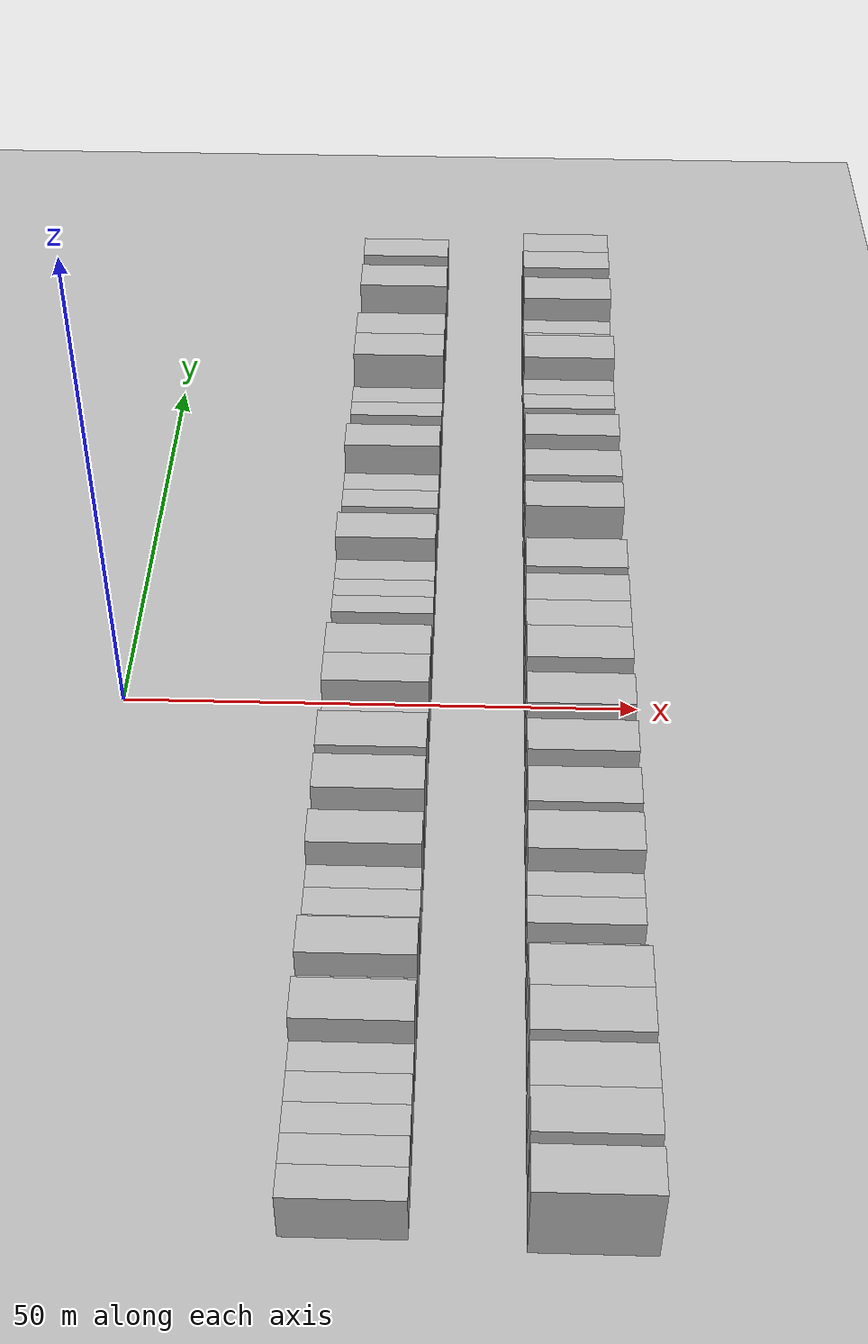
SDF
<sdf version="1.6">
 <world name="default">
  <include><name>ground_plane_1</name><uri>model://HANNAS_ground_plane</uri></include>
  <include>
   <name>ground_plane_2</name>
   <uri>model://HANNAS_ground_plane</uri>
   <pose>100 0 0  0 0 0</pose>
  </include>
  <model name="building_32">
   <static>1</static>
   <pose>25.0000 -56.2115 0 0.000000 0.000000 0.000000</pose>
   <link name="link">
    <pose>0 0 3.00 0 0 0</pose>
    <collision name="collision"><geometry><box><size>10.0000 2.8945 6.0000</size></box></geometry></collision>
    <visual name="visual">
     <cast_shadows>0</cast_shadows>
     <geometry><box><size>10.0000 2.8945 6.0000</size></box></geometry>
     <material>
      <script>
       <uri>model://HANNAS_wall/materials/scripts</uri>
       <uri>model://HANNAS_wall/materials/textures</uri>
       <name>vrc/HANNAS_wall</name>
      </script>
     </material>
    </visual>
   </link>
  </model>
  <model name="building_33">
   <static>1</static>
   <pose>25.0000 -53.4264 0 0.000000 0.000000 0.000000</pose>
   <link name="link">
    <pose>0 0 3.00 0 0 0</pose>
    <collision name="collision"><geometry><box><size>10.0000 2.6756 6.0000</size></box></geometry></collision>
    <visual name="visual">
     <cast_shadows>0</cast_shadows>
     <geometry><box><size>10.0000 2.6756 6.0000</size></box></geometry>
     <material>
      <script>
       <uri>model://HANNAS_wall/materials/scripts</uri>
       <uri>model://HANNAS_wall/materials/textures</uri>
       <name>vrc/HANNAS_wall</name>
      </script>
     </material>
    </visual>
   </link>
  </model>
  <model name="building_34">
   <static>1</static>
   <pose>25.0000 -50.6966 0 0.000000 0.000000 0.000000</pose>
   <link name="link">
    <pose>0 0 3.00 0 0 0</pose>
    <collision name="collision"><geometry><box><size>10.0000 2.7839 6.0000</size></box></geometry></collision>
    <visual name="visual">
     <cast_shadows>0</cast_shadows>
     <geometry><box><size>10.0000 2.7839 6.0000</size></box></geometry>
     <material>
      <script>
       <uri>model://HANNAS_wall/materials/scripts</uri>
       <uri>model://HANNAS_wall/materials/textures</uri>
       <name>vrc/HANNAS_wall</name>
      </script>
     </material>
    </visual>
   </link>
  </model>
  <model name="building_35">
   <static>1</static>
   <pose>25.0000 -47.9064 0 0.000000 0.000000 0.000000</pose>
   <link name="link">
    <pose>0 0 3.00 0 0 0</pose>
    <collision name="collision"><geometry><box><size>10.0000 2.7965 6.0000</size></box></geometry></collision>
    <visual name="visual">
     <cast_shadows>0</cast_shadows>
     <geometry><box><size>10.0000 2.7965 6.0000</size></box></geometry>
     <material>
      <script>
       <uri>model://HANNAS_wall/materials/scripts</uri>
       <uri>model://HANNAS_wall/materials/textures</uri>
       <name>vrc/HANNAS_wall</name>
      </script>
     </material>
    </visual>
   </link>
  </model>
  <model name="building_36">
   <static>1</static>
   <pose>25.0000 -45.0983 0 0.000000 0.000000 0.000000</pose>
   <link name="link">
    <pose>0 0 3.00 0 0 0</pose>
    <collision name="collision"><geometry><box><size>10.0000 2.8197 6.0000</size></box></geometry></collision>
    <visual name="visual">
     <cast_shadows>0</cast_shadows>
     <geometry><box><size>10.0000 2.8197 6.0000</size></box></geometry>
     <material>
      <script>
       <uri>model://HANNAS_wall/materials/scripts</uri>
       <uri>model://HANNAS_wall/materials/textures</uri>
       <name>vrc/HANNAS_wall</name>
      </script>
     </material>
    </visual>
   </link>
  </model>
  <model name="building_37">
   <static>1</static>
   <pose>25.0000 -41.6867 0 0.000000 0.000000 0.000000</pose>
   <link name="link">
    <pose>0 0 4.50 0 0 0</pose>
    <collision name="collision"><geometry><box><size>10.0000 4.0036 9.0000</size></box></geometry></collision>
    <visual name="visual">
     <cast_shadows>0</cast_shadows>
     <geometry><box><size>10.0000 4.0036 9.0000</size></box></geometry>
     <material>
      <script>
       <uri>model://HANNAS_wall/materials/scripts</uri>
       <uri>model://HANNAS_wall/materials/textures</uri>
       <name>vrc/HANNAS_wall</name>
      </script>
     </material>
    </visual>
   </link>
  </model>
  <model name="building_38">
   <static>1</static>
   <pose>25.0000 -38.4677 0 0.000000 0.000000 0.000000</pose>
   <link name="link">
    <pose>0 0 3.00 0 0 0</pose>
    <collision name="collision"><geometry><box><size>10.0000 2.4344 6.0000</size></box></geometry></collision>
    <visual name="visual">
     <cast_shadows>0</cast_shadows>
     <geometry><box><size>10.0000 2.4344 6.0000</size></box></geometry>
     <material>
      <script>
       <uri>model://HANNAS_wall/materials/scripts</uri>
       <uri>model://HANNAS_wall/materials/textures</uri>
       <name>vrc/HANNAS_wall</name>
      </script>
     </material>
    </visual>
   </link>
  </model>
  <model name="building_39">
   <static>1</static>
   <pose>25.0000 -35.3633 0 0.000000 0.000000 0.000000</pose>
   <link name="link">
    <pose>0 0 4.50 0 0 0</pose>
    <collision name="collision"><geometry><box><size>10.0000 3.7743 9.0000</size></box></geometry></collision>
    <visual name="visual">
     <cast_shadows>0</cast_shadows>
     <geometry><box><size>10.0000 3.7743 9.0000</size></box></geometry>
     <material>
      <script>
       <uri>model://HANNAS_wall/materials/scripts</uri>
       <uri>model://HANNAS_wall/materials/textures</uri>
       <name>vrc/HANNAS_wall</name>
      </script>
     </material>
    </visual>
   </link>
  </model>
  <model name="building_40">
   <static>1</static>
   <pose>25.0000 -32.2189 0 0.000000 0.000000 0.000000</pose>
   <link name="link">
    <pose>0 0 3.00 0 0 0</pose>
    <collision name="collision"><geometry><box><size>10.0000 2.5145 6.0000</size></box></geometry></collision>
    <visual name="visual">
     <cast_shadows>0</cast_shadows>
     <geometry><box><size>10.0000 2.5145 6.0000</size></box></geometry>
     <material>
      <script>
       <uri>model://HANNAS_wall/materials/scripts</uri>
       <uri>model://HANNAS_wall/materials/textures</uri>
       <name>vrc/HANNAS_wall</name>
      </script>
     </material>
    </visual>
   </link>
  </model>
  <model name="building_41">
   <static>1</static>
   <pose>25.0000 -29.4833 0 0.000000 0.000000 0.000000</pose>
   <link name="link">
    <pose>0 0 3.00 0 0 0</pose>
    <collision name="collision"><geometry><box><size>10.0000 2.9567 6.0000</size></box></geometry></collision>
    <visual name="visual">
     <cast_shadows>0</cast_shadows>
     <geometry><box><size>10.0000 2.9567 6.0000</size></box></geometry>
     <material>
      <script>
       <uri>model://HANNAS_wall/materials/scripts</uri>
       <uri>model://HANNAS_wall/materials/textures</uri>
       <name>vrc/HANNAS_wall</name>
      </script>
     </material>
    </visual>
   </link>
  </model>
  <model name="building_42">
   <static>1</static>
   <pose>25.0000 -26.7671 0 0.000000 0.000000 0.000000</pose>
   <link name="link">
    <pose>0 0 3.00 0 0 0</pose>
    <collision name="collision"><geometry><box><size>10.0000 2.4755 6.0000</size></box></geometry></collision>
    <visual name="visual">
     <cast_shadows>0</cast_shadows>
     <geometry><box><size>10.0000 2.4755 6.0000</size></box></geometry>
     <material>
      <script>
       <uri>model://HANNAS_wall/materials/scripts</uri>
       <uri>model://HANNAS_wall/materials/textures</uri>
       <name>vrc/HANNAS_wall</name>
      </script>
     </material>
    </visual>
   </link>
  </model>
  <model name="building_43">
   <static>1</static>
   <pose>25.0000 -23.6810 0 0.000000 0.000000 0.000000</pose>
   <link name="link">
    <pose>0 0 4.50 0 0 0</pose>
    <collision name="collision"><geometry><box><size>10.0000 3.6968 9.0000</size></box></geometry></collision>
    <visual name="visual">
     <cast_shadows>0</cast_shadows>
     <geometry><box><size>10.0000 3.6968 9.0000</size></box></geometry>
     <material>
      <script>
       <uri>model://HANNAS_wall/materials/scripts</uri>
       <uri>model://HANNAS_wall/materials/textures</uri>
       <name>vrc/HANNAS_wall</name>
      </script>
     </material>
    </visual>
   </link>
  </model>
  <model name="building_44">
   <static>1</static>
   <pose>25.0000 -20.5308 0 0.000000 0.000000 0.000000</pose>
   <link name="link">
    <pose>0 0 3.00 0 0 0</pose>
    <collision name="collision"><geometry><box><size>10.0000 2.6037 6.0000</size></box></geometry></collision>
    <visual name="visual">
     <cast_shadows>0</cast_shadows>
     <geometry><box><size>10.0000 2.6037 6.0000</size></box></geometry>
     <material>
      <script>
       <uri>model://HANNAS_wall/materials/scripts</uri>
       <uri>model://HANNAS_wall/materials/textures</uri>
       <name>vrc/HANNAS_wall</name>
      </script>
     </material>
    </visual>
   </link>
  </model>
  <model name="building_45">
   <static>1</static>
   <pose>25.0000 -17.2107 0 0.000000 0.000000 0.000000</pose>
   <link name="link">
    <pose>0 0 4.50 0 0 0</pose>
    <collision name="collision"><geometry><box><size>10.0000 4.0365 9.0000</size></box></geometry></collision>
    <visual name="visual">
     <cast_shadows>0</cast_shadows>
     <geometry><box><size>10.0000 4.0365 9.0000</size></box></geometry>
     <material>
      <script>
       <uri>model://HANNAS_wall/materials/scripts</uri>
       <uri>model://HANNAS_wall/materials/textures</uri>
       <name>vrc/HANNAS_wall</name>
      </script>
     </material>
    </visual>
   </link>
  </model>
  <model name="building_46">
   <static>1</static>
   <pose>25.0000 -12.0202 0 0.000000 0.000000 0.000000</pose>
   <link name="link">
    <pose>0 0 4.50 0 0 0</pose>
    <collision name="collision"><geometry><box><size>10.0000 4.3445 9.0000</size></box></geometry></collision>
    <visual name="visual">
     <cast_shadows>0</cast_shadows>
     <geometry><box><size>10.0000 4.3445 9.0000</size></box></geometry>
     <material>
      <script>
       <uri>model://HANNAS_wall/materials/scripts</uri>
       <uri>model://HANNAS_wall/materials/textures</uri>
       <name>vrc/HANNAS_wall</name>
      </script>
     </material>
    </visual>
   </link>
  </model>
  <model name="building_47">
   <static>1</static>
   <pose>25.0000 -7.3743 0 0.000000 0.000000 0.000000</pose>
   <link name="link">
    <pose>0 0 3.00 0 0 0</pose>
    <collision name="collision"><geometry><box><size>10.0000 2.9473 6.0000</size></box></geometry></collision>
    <visual name="visual">
     <cast_shadows>0</cast_shadows>
     <geometry><box><size>10.0000 2.9473 6.0000</size></box></geometry>
     <material>
      <script>
       <uri>model://HANNAS_wall/materials/scripts</uri>
       <uri>model://HANNAS_wall/materials/textures</uri>
       <name>vrc/HANNAS_wall</name>
      </script>
     </material>
    </visual>
   </link>
  </model>
  <model name="building_48">
   <static>1</static>
   <pose>25.0000 -4.0361 0 0.000000 0.000000 0.000000</pose>
   <link name="link">
    <pose>0 0 4.50 0 0 0</pose>
    <collision name="collision"><geometry><box><size>10.0000 3.7290 9.0000</size></box></geometry></collision>
    <visual name="visual">
     <cast_shadows>0</cast_shadows>
     <geometry><box><size>10.0000 3.7290 9.0000</size></box></geometry>
     <material>
      <script>
       <uri>model://HANNAS_wall/materials/scripts</uri>
       <uri>model://HANNAS_wall/materials/textures</uri>
       <name>vrc/HANNAS_wall</name>
      </script>
     </material>
    </visual>
   </link>
  </model>
  <model name="building_49">
   <static>1</static>
   <pose>25.0000 -0.1658 0 0.000000 0.000000 0.000000</pose>
   <link name="link">
    <pose>0 0 4.50 0 0 0</pose>
    <collision name="collision"><geometry><box><size>10.0000 4.0117 9.0000</size></box></geometry></collision>
    <visual name="visual">
     <cast_shadows>0</cast_shadows>
     <geometry><box><size>10.0000 4.0117 9.0000</size></box></geometry>
     <material>
      <script>
       <uri>model://HANNAS_wall/materials/scripts</uri>
       <uri>model://HANNAS_wall/materials/textures</uri>
       <name>vrc/HANNAS_wall</name>
      </script>
     </material>
    </visual>
   </link>
  </model>
  <model name="building_50">
   <static>1</static>
   <pose>25.0000 3.2630 0 0.000000 0.000000 0.000000</pose>
   <link name="link">
    <pose>0 0 3.00 0 0 0</pose>
    <collision name="collision"><geometry><box><size>10.0000 2.8459 6.0000</size></box></geometry></collision>
    <visual name="visual">
     <cast_shadows>0</cast_shadows>
     <geometry><box><size>10.0000 2.8459 6.0000</size></box></geometry>
     <material>
      <script>
       <uri>model://HANNAS_wall/materials/scripts</uri>
       <uri>model://HANNAS_wall/materials/textures</uri>
       <name>vrc/HANNAS_wall</name>
      </script>
     </material>
    </visual>
   </link>
  </model>
  <model name="building_51">
   <static>1</static>
   <pose>25.0000 7.9048 0 0.000000 0.000000 0.000000</pose>
   <link name="link">
    <pose>0 0 3.00 0 0 0</pose>
    <collision name="collision"><geometry><box><size>10.0000 2.4378 6.0000</size></box></geometry></collision>
    <visual name="visual">
     <cast_shadows>0</cast_shadows>
     <geometry><box><size>10.0000 2.4378 6.0000</size></box></geometry>
     <material>
      <script>
       <uri>model://HANNAS_wall/materials/scripts</uri>
       <uri>model://HANNAS_wall/materials/textures</uri>
       <name>vrc/HANNAS_wall</name>
      </script>
     </material>
    </visual>
   </link>
  </model>
  <model name="building_52">
   <static>1</static>
   <pose>25.0000 10.3342 0 0.000000 0.000000 0.000000</pose>
   <link name="link">
    <pose>0 0 3.00 0 0 0</pose>
    <collision name="collision"><geometry><box><size>10.0000 2.4209 6.0000</size></box></geometry></collision>
    <visual name="visual">
     <cast_shadows>0</cast_shadows>
     <geometry><box><size>10.0000 2.4209 6.0000</size></box></geometry>
     <material>
      <script>
       <uri>model://HANNAS_wall/materials/scripts</uri>
       <uri>model://HANNAS_wall/materials/textures</uri>
       <name>vrc/HANNAS_wall</name>
      </script>
     </material>
    </visual>
   </link>
  </model>
  <model name="building_53">
   <static>1</static>
   <pose>25.0000 13.0067 0 0.000000 0.000000 0.000000</pose>
   <link name="link">
    <pose>0 0 3.00 0 0 0</pose>
    <collision name="collision"><geometry><box><size>10.0000 2.9242 6.0000</size></box></geometry></collision>
    <visual name="visual">
     <cast_shadows>0</cast_shadows>
     <geometry><box><size>10.0000 2.9242 6.0000</size></box></geometry>
     <material>
      <script>
       <uri>model://HANNAS_wall/materials/scripts</uri>
       <uri>model://HANNAS_wall/materials/textures</uri>
       <name>vrc/HANNAS_wall</name>
      </script>
     </material>
    </visual>
   </link>
  </model>
  <model name="building_54">
   <static>1</static>
   <pose>25.0000 16.3869 0 0.000000 0.000000 0.000000</pose>
   <link name="link">
    <pose>0 0 4.50 0 0 0</pose>
    <collision name="collision"><geometry><box><size>10.0000 3.8363 9.0000</size></box></geometry></collision>
    <visual name="visual">
     <cast_shadows>0</cast_shadows>
     <geometry><box><size>10.0000 3.8363 9.0000</size></box></geometry>
     <material>
      <script>
       <uri>model://HANNAS_wall/materials/scripts</uri>
       <uri>model://HANNAS_wall/materials/textures</uri>
       <name>vrc/HANNAS_wall</name>
      </script>
     </material>
    </visual>
   </link>
  </model>
  <model name="building_55">
   <static>1</static>
   <pose>25.0000 20.5947 0 0.000000 0.000000 0.000000</pose>
   <link name="link">
    <pose>0 0 3.00 0 0 0</pose>
    <collision name="collision"><geometry><box><size>10.0000 2.5793 6.0000</size></box></geometry></collision>
    <visual name="visual">
     <cast_shadows>0</cast_shadows>
     <geometry><box><size>10.0000 2.5793 6.0000</size></box></geometry>
     <material>
      <script>
       <uri>model://HANNAS_wall/materials/scripts</uri>
       <uri>model://HANNAS_wall/materials/textures</uri>
       <name>vrc/HANNAS_wall</name>
      </script>
     </material>
    </visual>
   </link>
  </model>
  <model name="building_56">
   <static>1</static>
   <pose>25.0000 24.3041 0 0.000000 0.000000 0.000000</pose>
   <link name="link">
    <pose>0 0 3.00 0 0 0</pose>
    <collision name="collision"><geometry><box><size>10.0000 2.8395 6.0000</size></box></geometry></collision>
    <visual name="visual">
     <cast_shadows>0</cast_shadows>
     <geometry><box><size>10.0000 2.8395 6.0000</size></box></geometry>
     <material>
      <script>
       <uri>model://HANNAS_wall/materials/scripts</uri>
       <uri>model://HANNAS_wall/materials/textures</uri>
       <name>vrc/HANNAS_wall</name>
      </script>
     </material>
    </visual>
   </link>
  </model>
  <model name="building_57">
   <static>1</static>
   <pose>25.0000 27.0720 0 0.000000 0.000000 0.000000</pose>
   <link name="link">
    <pose>0 0 3.00 0 0 0</pose>
    <collision name="collision"><geometry><box><size>10.0000 2.6962 6.0000</size></box></geometry></collision>
    <visual name="visual">
     <cast_shadows>0</cast_shadows>
     <geometry><box><size>10.0000 2.6962 6.0000</size></box></geometry>
     <material>
      <script>
       <uri>model://HANNAS_wall/materials/scripts</uri>
       <uri>model://HANNAS_wall/materials/textures</uri>
       <name>vrc/HANNAS_wall</name>
      </script>
     </material>
    </visual>
   </link>
  </model>
  <model name="building_58">
   <static>1</static>
   <pose>25.0000 31.2471 0 0.000000 0.000000 0.000000</pose>
   <link name="link">
    <pose>0 0 4.50 0 0 0</pose>
    <collision name="collision"><geometry><box><size>10.0000 3.6541 9.0000</size></box></geometry></collision>
    <visual name="visual">
     <cast_shadows>0</cast_shadows>
     <geometry><box><size>10.0000 3.6541 9.0000</size></box></geometry>
     <material>
      <script>
       <uri>model://HANNAS_wall/materials/scripts</uri>
       <uri>model://HANNAS_wall/materials/textures</uri>
       <name>vrc/HANNAS_wall</name>
      </script>
     </material>
    </visual>
   </link>
  </model>
  <model name="building_59">
   <static>1</static>
   <pose>25.0000 35.3834 0 0.000000 0.000000 0.000000</pose>
   <link name="link">
    <pose>0 0 3.00 0 0 0</pose>
    <collision name="collision"><geometry><box><size>10.0000 2.6183 6.0000</size></box></geometry></collision>
    <visual name="visual">
     <cast_shadows>0</cast_shadows>
     <geometry><box><size>10.0000 2.6183 6.0000</size></box></geometry>
     <material>
      <script>
       <uri>model://HANNAS_wall/materials/scripts</uri>
       <uri>model://HANNAS_wall/materials/textures</uri>
       <name>vrc/HANNAS_wall</name>
      </script>
     </material>
    </visual>
   </link>
  </model>
  <model name="building_60">
   <static>1</static>
   <pose>25.0000 39.8968 0 0.000000 0.000000 0.000000</pose>
   <link name="link">
    <pose>0 0 3.00 0 0 0</pose>
    <collision name="collision"><geometry><box><size>10.0000 2.4085 6.0000</size></box></geometry></collision>
    <visual name="visual">
     <cast_shadows>0</cast_shadows>
     <geometry><box><size>10.0000 2.4085 6.0000</size></box></geometry>
     <material>
      <script>
       <uri>model://HANNAS_wall/materials/scripts</uri>
       <uri>model://HANNAS_wall/materials/textures</uri>
       <name>vrc/HANNAS_wall</name>
      </script>
     </material>
    </visual>
   </link>
  </model>
  <model name="building_61">
   <static>1</static>
   <pose>25.0000 42.4648 0 0.000000 0.000000 0.000000</pose>
   <link name="link">
    <pose>0 0 3.00 0 0 0</pose>
    <collision name="collision"><geometry><box><size>10.0000 2.7277 6.0000</size></box></geometry></collision>
    <visual name="visual">
     <cast_shadows>0</cast_shadows>
     <geometry><box><size>10.0000 2.7277 6.0000</size></box></geometry>
     <material>
      <script>
       <uri>model://HANNAS_wall/materials/scripts</uri>
       <uri>model://HANNAS_wall/materials/textures</uri>
       <name>vrc/HANNAS_wall</name>
      </script>
     </material>
    </visual>
   </link>
  </model>
  <model name="building_62">
   <static>1</static>
   <pose>25.0000 47.9217 0 0.000000 0.000000 0.000000</pose>
   <link name="link">
    <pose>0 0 4.50 0 0 0</pose>
    <collision name="collision"><geometry><box><size>10.0000 4.1862 9.0000</size></box></geometry></collision>
    <visual name="visual">
     <cast_shadows>0</cast_shadows>
     <geometry><box><size>10.0000 4.1862 9.0000</size></box></geometry>
     <material>
      <script>
       <uri>model://HANNAS_wall/materials/scripts</uri>
       <uri>model://HANNAS_wall/materials/textures</uri>
       <name>vrc/HANNAS_wall</name>
      </script>
     </material>
    </visual>
   </link>
  </model>
  <model name="building_63">
   <static>1</static>
   <pose>25.0000 52.0363 0 0.000000 0.000000 0.000000</pose>
   <link name="link">
    <pose>0 0 4.50 0 0 0</pose>
    <collision name="collision"><geometry><box><size>10.0000 4.0429 9.0000</size></box></geometry></collision>
    <visual name="visual">
     <cast_shadows>0</cast_shadows>
     <geometry><box><size>10.0000 4.0429 9.0000</size></box></geometry>
     <material>
      <script>
       <uri>model://HANNAS_wall/materials/scripts</uri>
       <uri>model://HANNAS_wall/materials/textures</uri>
       <name>vrc/HANNAS_wall</name>
      </script>
     </material>
    </visual>
   </link>
  </model>
  <model name="building_64">
   <static>1</static>
   <pose>25.0000 56.3998 0 0.000000 0.000000 0.000000</pose>
   <link name="link">
    <pose>0 0 3.00 0 0 0</pose>
    <collision name="collision"><geometry><box><size>10.0000 2.6841 6.0000</size></box></geometry></collision>
    <visual name="visual">
     <cast_shadows>0</cast_shadows>
     <geometry><box><size>10.0000 2.6841 6.0000</size></box></geometry>
     <material>
      <script>
       <uri>model://HANNAS_wall/materials/scripts</uri>
       <uri>model://HANNAS_wall/materials/textures</uri>
       <name>vrc/HANNAS_wall</name>
      </script>
     </material>
    </visual>
   </link>
  </model>
  <model name="building_65">
   <static>1</static>
   <pose>25.0000 61.9227 0 0.000000 0.000000 0.000000</pose>
   <link name="link">
    <pose>0 0 4.50 0 0 0</pose>
    <collision name="collision"><geometry><box><size>10.0000 4.3616 9.0000</size></box></geometry></collision>
    <visual name="visual">
     <cast_shadows>0</cast_shadows>
     <geometry><box><size>10.0000 4.3616 9.0000</size></box></geometry>
     <material>
      <script>
       <uri>model://HANNAS_wall/materials/scripts</uri>
       <uri>model://HANNAS_wall/materials/textures</uri>
       <name>vrc/HANNAS_wall</name>
      </script>
     </material>
    </visual>
   </link>
  </model>
  <model name="building_66">
   <static>1</static>
   <pose>25.0000 67.9620 0 0.000000 0.000000 0.000000</pose>
   <link name="link">
    <pose>0 0 4.50 0 0 0</pose>
    <collision name="collision"><geometry><box><size>10.0000 3.7170 9.0000</size></box></geometry></collision>
    <visual name="visual">
     <cast_shadows>0</cast_shadows>
     <geometry><box><size>10.0000 3.7170 9.0000</size></box></geometry>
     <material>
      <script>
       <uri>model://HANNAS_wall/materials/scripts</uri>
       <uri>model://HANNAS_wall/materials/textures</uri>
       <name>vrc/HANNAS_wall</name>
      </script>
     </material>
    </visual>
   </link>
  </model>
  <model name="building_137">
   <static>1</static>
   <pose>44.0000 -56.3811 0 0.000000 0.000000 0.000000</pose>
   <link name="link">
    <pose>0 0 4.50 0 0 0</pose>
    <collision name="collision"><geometry><box><size>10.0000 4.0840 9.0000</size></box></geometry></collision>
    <visual name="visual">
     <cast_shadows>0</cast_shadows>
     <geometry><box><size>10.0000 4.0840 9.0000</size></box></geometry>
     <material>
      <script>
       <uri>model://HANNAS_wall/materials/scripts</uri>
       <uri>model://HANNAS_wall/materials/textures</uri>
       <name>vrc/HANNAS_wall</name>
      </script>
     </material>
    </visual>
   </link>
  </model>
  <model name="building_138">
   <static>1</static>
   <pose>44.0000 -51.2984 0 0.000000 0.000000 0.000000</pose>
   <link name="link">
    <pose>0 0 4.50 0 0 0</pose>
    <collision name="collision"><geometry><box><size>10.0000 4.0812 9.0000</size></box></geometry></collision>
    <visual name="visual">
     <cast_shadows>0</cast_shadows>
     <geometry><box><size>10.0000 4.0812 9.0000</size></box></geometry>
     <material>
      <script>
       <uri>model://HANNAS_wall/materials/scripts</uri>
       <uri>model://HANNAS_wall/materials/textures</uri>
       <name>vrc/HANNAS_wall</name>
      </script>
     </material>
    </visual>
   </link>
  </model>
  <model name="building_139">
   <static>1</static>
   <pose>44.0000 -47.2072 0 0.000000 0.000000 0.000000</pose>
   <link name="link">
    <pose>0 0 4.50 0 0 0</pose>
    <collision name="collision"><geometry><box><size>10.0000 4.1012 9.0000</size></box></geometry></collision>
    <visual name="visual">
     <cast_shadows>0</cast_shadows>
     <geometry><box><size>10.0000 4.1012 9.0000</size></box></geometry>
     <material>
      <script>
       <uri>model://HANNAS_wall/materials/scripts</uri>
       <uri>model://HANNAS_wall/materials/textures</uri>
       <name>vrc/HANNAS_wall</name>
      </script>
     </material>
    </visual>
   </link>
  </model>
  <model name="building_140">
   <static>1</static>
   <pose>44.0000 -42.0124 0 0.000000 0.000000 0.000000</pose>
   <link name="link">
    <pose>0 0 4.50 0 0 0</pose>
    <collision name="collision"><geometry><box><size>10.0000 4.2884 9.0000</size></box></geometry></collision>
    <visual name="visual">
     <cast_shadows>0</cast_shadows>
     <geometry><box><size>10.0000 4.2884 9.0000</size></box></geometry>
     <material>
      <script>
       <uri>model://HANNAS_wall/materials/scripts</uri>
       <uri>model://HANNAS_wall/materials/textures</uri>
       <name>vrc/HANNAS_wall</name>
      </script>
     </material>
    </visual>
   </link>
  </model>
  <model name="building_141">
   <static>1</static>
   <pose>44.0000 -37.8080 0 0.000000 0.000000 0.000000</pose>
   <link name="link">
    <pose>0 0 4.50 0 0 0</pose>
    <collision name="collision"><geometry><box><size>10.0000 4.1204 9.0000</size></box></geometry></collision>
    <visual name="visual">
     <cast_shadows>0</cast_shadows>
     <geometry><box><size>10.0000 4.1204 9.0000</size></box></geometry>
     <material>
      <script>
       <uri>model://HANNAS_wall/materials/scripts</uri>
       <uri>model://HANNAS_wall/materials/textures</uri>
       <name>vrc/HANNAS_wall</name>
      </script>
     </material>
    </visual>
   </link>
  </model>
  <model name="building_142">
   <static>1</static>
   <pose>44.0000 -34.5047 0 0.000000 0.000000 0.000000</pose>
   <link name="link">
    <pose>0 0 3.00 0 0 0</pose>
    <collision name="collision"><geometry><box><size>10.0000 2.4861 6.0000</size></box></geometry></collision>
    <visual name="visual">
     <cast_shadows>0</cast_shadows>
     <geometry><box><size>10.0000 2.4861 6.0000</size></box></geometry>
     <material>
      <script>
       <uri>model://HANNAS_wall/materials/scripts</uri>
       <uri>model://HANNAS_wall/materials/textures</uri>
       <name>vrc/HANNAS_wall</name>
      </script>
     </material>
    </visual>
   </link>
  </model>
  <model name="building_143">
   <static>1</static>
   <pose>44.0000 -29.8033 0 0.000000 0.000000 0.000000</pose>
   <link name="link">
    <pose>0 0 3.00 0 0 0</pose>
    <collision name="collision"><geometry><box><size>10.0000 2.9167 6.0000</size></box></geometry></collision>
    <visual name="visual">
     <cast_shadows>0</cast_shadows>
     <geometry><box><size>10.0000 2.9167 6.0000</size></box></geometry>
     <material>
      <script>
       <uri>model://HANNAS_wall/materials/scripts</uri>
       <uri>model://HANNAS_wall/materials/textures</uri>
       <name>vrc/HANNAS_wall</name>
      </script>
     </material>
    </visual>
   </link>
  </model>
  <model name="building_144">
   <static>1</static>
   <pose>44.0000 -26.9939 0 0.000000 0.000000 0.000000</pose>
   <link name="link">
    <pose>0 0 3.00 0 0 0</pose>
    <collision name="collision"><geometry><box><size>10.0000 2.7022 6.0000</size></box></geometry></collision>
    <visual name="visual">
     <cast_shadows>0</cast_shadows>
     <geometry><box><size>10.0000 2.7022 6.0000</size></box></geometry>
     <material>
      <script>
       <uri>model://HANNAS_wall/materials/scripts</uri>
       <uri>model://HANNAS_wall/materials/textures</uri>
       <name>vrc/HANNAS_wall</name>
      </script>
     </material>
    </visual>
   </link>
  </model>
  <model name="building_145">
   <static>1</static>
   <pose>44.0000 -23.4773 0 0.000000 0.000000 0.000000</pose>
   <link name="link">
    <pose>0 0 4.50 0 0 0</pose>
    <collision name="collision"><geometry><box><size>10.0000 4.3309 9.0000</size></box></geometry></collision>
    <visual name="visual">
     <cast_shadows>0</cast_shadows>
     <geometry><box><size>10.0000 4.3309 9.0000</size></box></geometry>
     <material>
      <script>
       <uri>model://HANNAS_wall/materials/scripts</uri>
       <uri>model://HANNAS_wall/materials/textures</uri>
       <name>vrc/HANNAS_wall</name>
      </script>
     </material>
    </visual>
   </link>
  </model>
  <model name="building_146">
   <static>1</static>
   <pose>44.0000 -18.2082 0 0.000000 0.000000 0.000000</pose>
   <link name="link">
    <pose>0 0 4.50 0 0 0</pose>
    <collision name="collision"><geometry><box><size>10.0000 4.2074 9.0000</size></box></geometry></collision>
    <visual name="visual">
     <cast_shadows>0</cast_shadows>
     <geometry><box><size>10.0000 4.2074 9.0000</size></box></geometry>
     <material>
      <script>
       <uri>model://HANNAS_wall/materials/scripts</uri>
       <uri>model://HANNAS_wall/materials/textures</uri>
       <name>vrc/HANNAS_wall</name>
      </script>
     </material>
    </visual>
   </link>
  </model>
  <model name="building_147">
   <static>1</static>
   <pose>44.0000 -12.1867 0 0.000000 0.000000 0.000000</pose>
   <link name="link">
    <pose>0 0 4.50 0 0 0</pose>
    <collision name="collision"><geometry><box><size>10.0000 3.8356 9.0000</size></box></geometry></collision>
    <visual name="visual">
     <cast_shadows>0</cast_shadows>
     <geometry><box><size>10.0000 3.8356 9.0000</size></box></geometry>
     <material>
      <script>
       <uri>model://HANNAS_wall/materials/scripts</uri>
       <uri>model://HANNAS_wall/materials/textures</uri>
       <name>vrc/HANNAS_wall</name>
      </script>
     </material>
    </visual>
   </link>
  </model>
  <model name="building_148">
   <static>1</static>
   <pose>44.0000 -6.2477 0 0.000000 0.000000 0.000000</pose>
   <link name="link">
    <pose>0 0 4.50 0 0 0</pose>
    <collision name="collision"><geometry><box><size>10.0000 4.0423 9.0000</size></box></geometry></collision>
    <visual name="visual">
     <cast_shadows>0</cast_shadows>
     <geometry><box><size>10.0000 4.0423 9.0000</size></box></geometry>
     <material>
      <script>
       <uri>model://HANNAS_wall/materials/scripts</uri>
       <uri>model://HANNAS_wall/materials/textures</uri>
       <name>vrc/HANNAS_wall</name>
      </script>
     </material>
    </visual>
   </link>
  </model>
  <model name="building_149">
   <static>1</static>
   <pose>44.0000 -0.0410 0 0.000000 0.000000 0.000000</pose>
   <link name="link">
    <pose>0 0 4.50 0 0 0</pose>
    <collision name="collision"><geometry><box><size>10.0000 4.3710 9.0000</size></box></geometry></collision>
    <visual name="visual">
     <cast_shadows>0</cast_shadows>
     <geometry><box><size>10.0000 4.3710 9.0000</size></box></geometry>
     <material>
      <script>
       <uri>model://HANNAS_wall/materials/scripts</uri>
       <uri>model://HANNAS_wall/materials/textures</uri>
       <name>vrc/HANNAS_wall</name>
      </script>
     </material>
    </visual>
   </link>
  </model>
  <model name="building_150">
   <static>1</static>
   <pose>44.0000 3.9520 0 0.000000 0.000000 0.000000</pose>
   <link name="link">
    <pose>0 0 4.50 0 0 0</pose>
    <collision name="collision"><geometry><box><size>10.0000 3.6150 9.0000</size></box></geometry></collision>
    <visual name="visual">
     <cast_shadows>0</cast_shadows>
     <geometry><box><size>10.0000 3.6150 9.0000</size></box></geometry>
     <material>
      <script>
       <uri>model://HANNAS_wall/materials/scripts</uri>
       <uri>model://HANNAS_wall/materials/textures</uri>
       <name>vrc/HANNAS_wall</name>
      </script>
     </material>
    </visual>
   </link>
  </model>
  <model name="building_151">
   <static>1</static>
   <pose>44.0000 7.6805 0 0.000000 0.000000 0.000000</pose>
   <link name="link">
    <pose>0 0 4.50 0 0 0</pose>
    <collision name="collision"><geometry><box><size>10.0000 3.8422 9.0000</size></box></geometry></collision>
    <visual name="visual">
     <cast_shadows>0</cast_shadows>
     <geometry><box><size>10.0000 3.8422 9.0000</size></box></geometry>
     <material>
      <script>
       <uri>model://HANNAS_wall/materials/scripts</uri>
       <uri>model://HANNAS_wall/materials/textures</uri>
       <name>vrc/HANNAS_wall</name>
      </script>
     </material>
    </visual>
   </link>
  </model>
  <model name="building_152">
   <static>1</static>
   <pose>44.0000 12.7704 0 0.000000 0.000000 0.000000</pose>
   <link name="link">
    <pose>0 0 4.50 0 0 0</pose>
    <collision name="collision"><geometry><box><size>10.0000 4.3376 9.0000</size></box></geometry></collision>
    <visual name="visual">
     <cast_shadows>0</cast_shadows>
     <geometry><box><size>10.0000 4.3376 9.0000</size></box></geometry>
     <material>
      <script>
       <uri>model://HANNAS_wall/materials/scripts</uri>
       <uri>model://HANNAS_wall/materials/textures</uri>
       <name>vrc/HANNAS_wall</name>
      </script>
     </material>
    </visual>
   </link>
  </model>
  <model name="building_153">
   <static>1</static>
   <pose>44.0000 16.4296 0 0.000000 0.000000 0.000000</pose>
   <link name="link">
    <pose>0 0 3.00 0 0 0</pose>
    <collision name="collision"><geometry><box><size>10.0000 2.9809 6.0000</size></box></geometry></collision>
    <visual name="visual">
     <cast_shadows>0</cast_shadows>
     <geometry><box><size>10.0000 2.9809 6.0000</size></box></geometry>
     <material>
      <script>
       <uri>model://HANNAS_wall/materials/scripts</uri>
       <uri>model://HANNAS_wall/materials/textures</uri>
       <name>vrc/HANNAS_wall</name>
      </script>
     </material>
    </visual>
   </link>
  </model>
  <model name="building_154">
   <static>1</static>
   <pose>44.0000 21.9489 0 0.000000 0.000000 0.000000</pose>
   <link name="link">
    <pose>0 0 4.50 0 0 0</pose>
    <collision name="collision"><geometry><box><size>10.0000 4.0576 9.0000</size></box></geometry></collision>
    <visual name="visual">
     <cast_shadows>0</cast_shadows>
     <geometry><box><size>10.0000 4.0576 9.0000</size></box></geometry>
     <material>
      <script>
       <uri>model://HANNAS_wall/materials/scripts</uri>
       <uri>model://HANNAS_wall/materials/textures</uri>
       <name>vrc/HANNAS_wall</name>
      </script>
     </material>
    </visual>
   </link>
  </model>
  <model name="building_155">
   <static>1</static>
   <pose>44.0000 27.1422 0 0.000000 0.000000 0.000000</pose>
   <link name="link">
    <pose>0 0 4.50 0 0 0</pose>
    <collision name="collision"><geometry><box><size>10.0000 4.3290 9.0000</size></box></geometry></collision>
    <visual name="visual">
     <cast_shadows>0</cast_shadows>
     <geometry><box><size>10.0000 4.3290 9.0000</size></box></geometry>
     <material>
      <script>
       <uri>model://HANNAS_wall/materials/scripts</uri>
       <uri>model://HANNAS_wall/materials/textures</uri>
       <name>vrc/HANNAS_wall</name>
      </script>
     </material>
    </visual>
   </link>
  </model>
  <model name="building_156">
   <static>1</static>
   <pose>44.0000 30.5593 0 0.000000 0.000000 0.000000</pose>
   <link name="link">
    <pose>0 0 3.00 0 0 0</pose>
    <collision name="collision"><geometry><box><size>10.0000 2.5053 6.0000</size></box></geometry></collision>
    <visual name="visual">
     <cast_shadows>0</cast_shadows>
     <geometry><box><size>10.0000 2.5053 6.0000</size></box></geometry>
     <material>
      <script>
       <uri>model://HANNAS_wall/materials/scripts</uri>
       <uri>model://HANNAS_wall/materials/textures</uri>
       <name>vrc/HANNAS_wall</name>
      </script>
     </material>
    </visual>
   </link>
  </model>
  <model name="building_157">
   <static>1</static>
   <pose>44.0000 33.6650 0 0.000000 0.000000 0.000000</pose>
   <link name="link">
    <pose>0 0 4.50 0 0 0</pose>
    <collision name="collision"><geometry><box><size>10.0000 3.7061 9.0000</size></box></geometry></collision>
    <visual name="visual">
     <cast_shadows>0</cast_shadows>
     <geometry><box><size>10.0000 3.7061 9.0000</size></box></geometry>
     <material>
      <script>
       <uri>model://HANNAS_wall/materials/scripts</uri>
       <uri>model://HANNAS_wall/materials/textures</uri>
       <name>vrc/HANNAS_wall</name>
      </script>
     </material>
    </visual>
   </link>
  </model>
  <model name="building_158">
   <static>1</static>
   <pose>44.0000 38.0171 0 0.000000 0.000000 0.000000</pose>
   <link name="link">
    <pose>0 0 3.00 0 0 0</pose>
    <collision name="collision"><geometry><box><size>10.0000 2.9980 6.0000</size></box></geometry></collision>
    <visual name="visual">
     <cast_shadows>0</cast_shadows>
     <geometry><box><size>10.0000 2.9980 6.0000</size></box></geometry>
     <material>
      <script>
       <uri>model://HANNAS_wall/materials/scripts</uri>
       <uri>model://HANNAS_wall/materials/textures</uri>
       <name>vrc/HANNAS_wall</name>
      </script>
     </material>
    </visual>
   </link>
  </model>
  <model name="building_159">
   <static>1</static>
   <pose>44.0000 41.7914 0 0.000000 0.000000 0.000000</pose>
   <link name="link">
    <pose>0 0 3.00 0 0 0</pose>
    <collision name="collision"><geometry><box><size>10.0000 2.5506 6.0000</size></box></geometry></collision>
    <visual name="visual">
     <cast_shadows>0</cast_shadows>
     <geometry><box><size>10.0000 2.5506 6.0000</size></box></geometry>
     <material>
      <script>
       <uri>model://HANNAS_wall/materials/scripts</uri>
       <uri>model://HANNAS_wall/materials/textures</uri>
       <name>vrc/HANNAS_wall</name>
      </script>
     </material>
    </visual>
   </link>
  </model>
  <model name="building_160">
   <static>1</static>
   <pose>44.0000 44.4653 0 0.000000 0.000000 0.000000</pose>
   <link name="link">
    <pose>0 0 3.00 0 0 0</pose>
    <collision name="collision"><geometry><box><size>10.0000 2.7974 6.0000</size></box></geometry></collision>
    <visual name="visual">
     <cast_shadows>0</cast_shadows>
     <geometry><box><size>10.0000 2.7974 6.0000</size></box></geometry>
     <material>
      <script>
       <uri>model://HANNAS_wall/materials/scripts</uri>
       <uri>model://HANNAS_wall/materials/textures</uri>
       <name>vrc/HANNAS_wall</name>
      </script>
     </material>
    </visual>
   </link>
  </model>
  <model name="building_161">
   <static>1</static>
   <pose>44.0000 48.0273 0 0.000000 0.000000 0.000000</pose>
   <link name="link">
    <pose>0 0 4.50 0 0 0</pose>
    <collision name="collision"><geometry><box><size>10.0000 4.3265 9.0000</size></box></geometry></collision>
    <visual name="visual">
     <cast_shadows>0</cast_shadows>
     <geometry><box><size>10.0000 4.3265 9.0000</size></box></geometry>
     <material>
      <script>
       <uri>model://HANNAS_wall/materials/scripts</uri>
       <uri>model://HANNAS_wall/materials/textures</uri>
       <name>vrc/HANNAS_wall</name>
      </script>
     </material>
    </visual>
   </link>
  </model>
  <model name="building_162">
   <static>1</static>
   <pose>44.0000 53.5841 0 0.000000 0.000000 0.000000</pose>
   <link name="link">
    <pose>0 0 3.00 0 0 0</pose>
    <collision name="collision"><geometry><box><size>10.0000 2.7871 6.0000</size></box></geometry></collision>
    <visual name="visual">
     <cast_shadows>0</cast_shadows>
     <geometry><box><size>10.0000 2.7871 6.0000</size></box></geometry>
     <material>
      <script>
       <uri>model://HANNAS_wall/materials/scripts</uri>
       <uri>model://HANNAS_wall/materials/textures</uri>
       <name>vrc/HANNAS_wall</name>
      </script>
     </material>
    </visual>
   </link>
  </model>
  <model name="building_163">
   <static>1</static>
   <pose>44.0000 56.2664 0 0.000000 0.000000 0.000000</pose>
   <link name="link">
    <pose>0 0 3.00 0 0 0</pose>
    <collision name="collision"><geometry><box><size>10.0000 2.5776 6.0000</size></box></geometry></collision>
    <visual name="visual">
     <cast_shadows>0</cast_shadows>
     <geometry><box><size>10.0000 2.5776 6.0000</size></box></geometry>
     <material>
      <script>
       <uri>model://HANNAS_wall/materials/scripts</uri>
       <uri>model://HANNAS_wall/materials/textures</uri>
       <name>vrc/HANNAS_wall</name>
      </script>
     </material>
    </visual>
   </link>
  </model>
  <model name="building_164">
   <static>1</static>
   <pose>44.0000 59.7782 0 0.000000 0.000000 0.000000</pose>
   <link name="link">
    <pose>0 0 4.50 0 0 0</pose>
    <collision name="collision"><geometry><box><size>10.0000 4.4460 9.0000</size></box></geometry></collision>
    <visual name="visual">
     <cast_shadows>0</cast_shadows>
     <geometry><box><size>10.0000 4.4460 9.0000</size></box></geometry>
     <material>
      <script>
       <uri>model://HANNAS_wall/materials/scripts</uri>
       <uri>model://HANNAS_wall/materials/textures</uri>
       <name>vrc/HANNAS_wall</name>
      </script>
     </material>
    </visual>
   </link>
  </model>
  <model name="building_165">
   <static>1</static>
   <pose>44.0000 65.8044 0 0.000000 0.000000 0.000000</pose>
   <link name="link">
    <pose>0 0 4.50 0 0 0</pose>
    <collision name="collision"><geometry><box><size>10.0000 3.6065 9.0000</size></box></geometry></collision>
    <visual name="visual">
     <cast_shadows>0</cast_shadows>
     <geometry><box><size>10.0000 3.6065 9.0000</size></box></geometry>
     <material>
      <script>
       <uri>model://HANNAS_wall/materials/scripts</uri>
       <uri>model://HANNAS_wall/materials/textures</uri>
       <name>vrc/HANNAS_wall</name>
      </script>
     </material>
    </visual>
   </link>
  </model>
  <model name="building_166">
   <static>1</static>
   <pose>44.0000 69.5273 0 0.000000 0.000000 0.000000</pose>
   <link name="link">
    <pose>0 0 4.50 0 0 0</pose>
    <collision name="collision"><geometry><box><size>10.0000 3.8392 9.0000</size></box></geometry></collision>
    <visual name="visual">
     <cast_shadows>0</cast_shadows>
     <geometry><box><size>10.0000 3.8392 9.0000</size></box></geometry>
     <material>
      <script>
       <uri>model://HANNAS_wall/materials/scripts</uri>
       <uri>model://HANNAS_wall/materials/textures</uri>
       <name>vrc/HANNAS_wall</name>
      </script>
     </material>
    </visual>
   </link>
  </model>
 </world>
</sdf>
